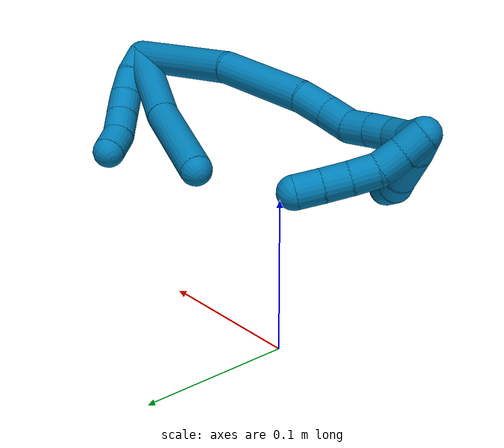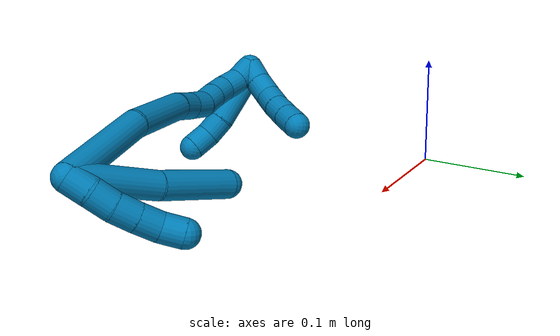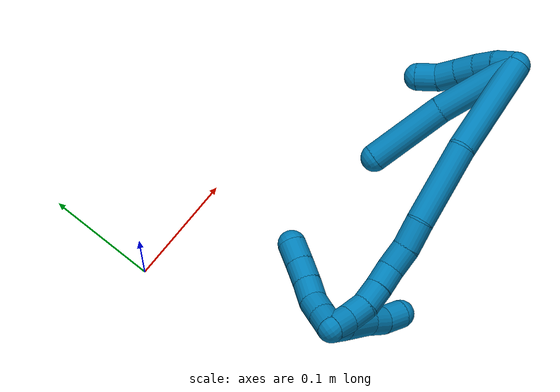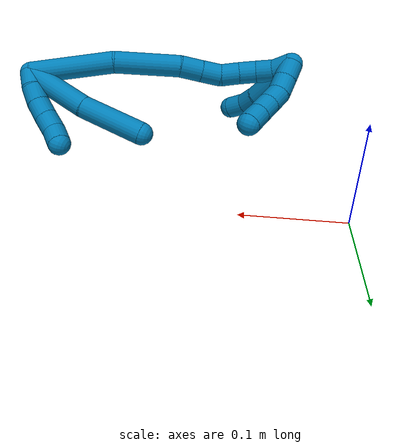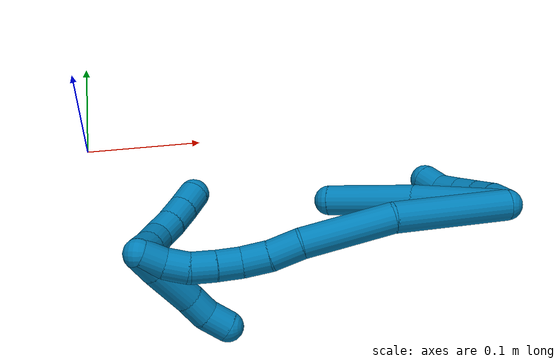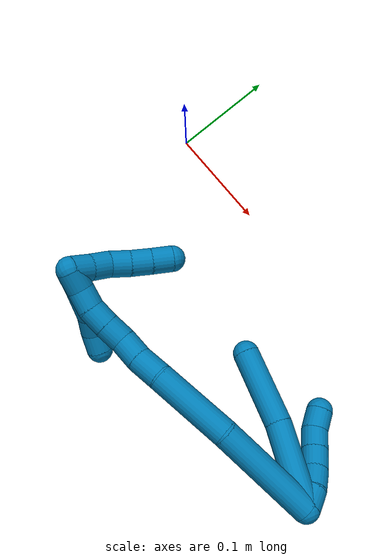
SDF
<sdf version="1.7">
 <world name="default">
  <model name="9">
   <static>0</static>
   <link name="9">
    <collision name="collision-cylinder-e_1_2_8">
     <pose>0.006914 -0.001709 -0.038188 3.09687 0.178945 2.65291</pose>
     <geometry><cylinder><radius>0.0125</radius><length>0.077693</length></cylinder></geometry>
     <surface>
      <friction><ode><mu>1.16</mu><mu2>1.16</mu2><slip1>0</slip1><slip2>0</slip2></ode></friction>
      <contact><ode><kp>1e+06</kp><kd>1</kd><max_vel>0</max_vel><min_depth>0.001</min_depth></ode></contact>
     </surface>
    </collision>
    <visual name="visual-cylinder-e_1_2_8">
     <pose>0.006914 -0.001709 -0.038188 3.09687 0.178945 2.65291</pose>
     <geometry><cylinder><radius>0.0125</radius><length>0.077693</length></cylinder></geometry>
     <material><ambient>0 0.490196 0.709804 1</ambient></material>
    </visual>
    <collision name="collision-cylinder-e_2_8_6">
     <pose>0.015126 -0.004831 -0.112478 3.10248 0.035881 1.48459</pose>
     <geometry><cylinder><radius>0.0125</radius><length>0.072307</length></cylinder></geometry>
     <surface>
      <friction><ode><mu>1.16</mu><mu2>1.16</mu2><slip1>0</slip1><slip2>0</slip2></ode></friction>
      <contact><ode><kp>1e+06</kp><kd>1</kd><max_vel>0</max_vel><min_depth>0.001</min_depth></ode></contact>
     </surface>
    </collision>
    <visual name="visual-cylinder-e_2_8_6">
     <pose>0.015126 -0.004831 -0.112478 3.10248 0.035881 1.48459</pose>
     <geometry><cylinder><radius>0.0125</radius><length>0.072307</length></cylinder></geometry>
     <material><ambient>0 0.490196 0.709804 1</ambient></material>
    </visual>
    <collision name="collision-cylinder-e_1_2_9">
     <pose>0.00786 -0.000923 -0.006113 2.9917 0.904302 2.83484</pose>
     <geometry><cylinder><radius>0.0125</radius><length>0.02</length></cylinder></geometry>
     <surface>
      <friction><ode><mu>1.16</mu><mu2>1.16</mu2><slip1>0</slip1><slip2>0</slip2></ode></friction>
      <contact><ode><kp>1e+06</kp><kd>1</kd><max_vel>0</max_vel><min_depth>0.001</min_depth></ode></contact>
     </surface>
    </collision>
    <visual name="visual-cylinder-e_1_2_9">
     <pose>0.00786 -0.000923 -0.006113 2.9917 0.904302 2.83484</pose>
     <geometry><cylinder><radius>0.0125</radius><length>0.02</length></cylinder></geometry>
     <material><ambient>0 0.490196 0.709804 1</ambient></material>
    </visual>
    <collision name="collision-cylinder-e_2_9_10">
     <pose>0.022379 -0.00397 -0.019377 2.8529 0.728775 2.41339</pose>
     <geometry><cylinder><radius>0.0125</radius><length>0.02</length></cylinder></geometry>
     <surface>
      <friction><ode><mu>1.16</mu><mu2>1.16</mu2><slip1>0</slip1><slip2>0</slip2></ode></friction>
      <contact><ode><kp>1e+06</kp><kd>1</kd><max_vel>0</max_vel><min_depth>0.001</min_depth></ode></contact>
     </surface>
    </collision>
    <visual name="visual-cylinder-e_2_9_10">
     <pose>0.022379 -0.00397 -0.019377 2.8529 0.728775 2.41339</pose>
     <geometry><cylinder><radius>0.0125</radius><length>0.02</length></cylinder></geometry>
     <material><ambient>0 0.490196 0.709804 1</ambient></material>
    </visual>
    <collision name="collision-cylinder-e_3_10_11">
     <pose>0.034677 -0.007542 -0.03466 2.96541 0.599002 2.58442</pose>
     <geometry><cylinder><radius>0.0125</radius><length>0.02</length></cylinder></geometry>
     <surface>
      <friction><ode><mu>1.16</mu><mu2>1.16</mu2><slip1>0</slip1><slip2>0</slip2></ode></friction>
      <contact><ode><kp>1e+06</kp><kd>1</kd><max_vel>0</max_vel><min_depth>0.001</min_depth></ode></contact>
     </surface>
    </collision>
    <visual name="visual-cylinder-e_3_10_11">
     <pose>0.034677 -0.007542 -0.03466 2.96541 0.599002 2.58442</pose>
     <geometry><cylinder><radius>0.0125</radius><length>0.02</length></cylinder></geometry>
     <material><ambient>0 0.490196 0.709804 1</ambient></material>
    </visual>
    <collision name="collision-cylinder-e_4_11_12">
     <pose>0.045728 -0.010103 -0.051125 3.00871 0.571944 2.6965</pose>
     <geometry><cylinder><radius>0.0125</radius><length>0.02</length></cylinder></geometry>
     <surface>
      <friction><ode><mu>1.16</mu><mu2>1.16</mu2><slip1>0</slip1><slip2>0</slip2></ode></friction>
      <contact><ode><kp>1e+06</kp><kd>1</kd><max_vel>0</max_vel><min_depth>0.001</min_depth></ode></contact>
     </surface>
    </collision>
    <visual name="visual-cylinder-e_4_11_12">
     <pose>0.045728 -0.010103 -0.051125 3.00871 0.571944 2.6965</pose>
     <geometry><cylinder><radius>0.0125</radius><length>0.02</length></cylinder></geometry>
     <material><ambient>0 0.490196 0.709804 1</ambient></material>
    </visual>
    <collision name="collision-cylinder-e_5_12_5">
     <pose>0.057595 -0.009646 -0.066934 -2.93436 0.701624 -2.58787</pose>
     <geometry><cylinder><radius>0.0125</radius><length>0.02</length></cylinder></geometry>
     <surface>
      <friction><ode><mu>1.16</mu><mu2>1.16</mu2><slip1>0</slip1><slip2>0</slip2></ode></friction>
      <contact><ode><kp>1e+06</kp><kd>1</kd><max_vel>0</max_vel><min_depth>0.001</min_depth></ode></contact>
     </surface>
    </collision>
    <visual name="visual-cylinder-e_5_12_5">
     <pose>0.057595 -0.009646 -0.066934 -2.93436 0.701624 -2.58787</pose>
     <geometry><cylinder><radius>0.0125</radius><length>0.02</length></cylinder></geometry>
     <material><ambient>0 0.490196 0.709804 1</ambient></material>
    </visual>
    <collision name="collision-cylinder-e_1_2_13">
     <pose>-0.023477 0.005033 -0.041496 -3.02088 -0.511742 2.68757</pose>
     <geometry><cylinder><radius>0.0125</radius><length>0.095883</length></cylinder></geometry>
     <surface>
      <friction><ode><mu>1.16</mu><mu2>1.16</mu2><slip1>0</slip1><slip2>0</slip2></ode></friction>
      <contact><ode><kp>1e+06</kp><kd>1</kd><max_vel>0</max_vel><min_depth>0.001</min_depth></ode></contact>
     </surface>
    </collision>
    <visual name="visual-cylinder-e_1_2_13">
     <pose>-0.023477 0.005033 -0.041496 -3.02088 -0.511742 2.68757</pose>
     <geometry><cylinder><radius>0.0125</radius><length>0.095883</length></cylinder></geometry>
     <material><ambient>0 0.490196 0.709804 1</ambient></material>
    </visual>
    <collision name="collision-cylinder-e_2_13_14">
     <pose>-0.062853 0.006199 -0.116355 3.02617 -0.442117 -2.6383</pose>
     <geometry><cylinder><radius>0.0125</radius><length>0.074321</length></cylinder></geometry>
     <surface>
      <friction><ode><mu>1.16</mu><mu2>1.16</mu2><slip1>0</slip1><slip2>0</slip2></ode></friction>
      <contact><ode><kp>1e+06</kp><kd>1</kd><max_vel>0</max_vel><min_depth>0.001</min_depth></ode></contact>
     </surface>
    </collision>
    <visual name="visual-cylinder-e_2_13_14">
     <pose>-0.062853 0.006199 -0.116355 3.02617 -0.442117 -2.6383</pose>
     <geometry><cylinder><radius>0.0125</radius><length>0.074321</length></cylinder></geometry>
     <material><ambient>0 0.490196 0.709804 1</ambient></material>
    </visual>
    <collision name="collision-cylinder-e_3_14_15">
     <pose>-0.083222 -0.001066 -0.161272 2.85566 -0.355409 -1.79027</pose>
     <geometry><cylinder><radius>0.0125</radius><length>0.02569</length></cylinder></geometry>
     <surface>
      <friction><ode><mu>1.16</mu><mu2>1.16</mu2><slip1>0</slip1><slip2>0</slip2></ode></friction>
      <contact><ode><kp>1e+06</kp><kd>1</kd><max_vel>0</max_vel><min_depth>0.001</min_depth></ode></contact>
     </surface>
    </collision>
    <visual name="visual-cylinder-e_3_14_15">
     <pose>-0.083222 -0.001066 -0.161272 2.85566 -0.355409 -1.79027</pose>
     <geometry><cylinder><radius>0.0125</radius><length>0.02569</length></cylinder></geometry>
     <material><ambient>0 0.490196 0.709804 1</ambient></material>
    </visual>
    <collision name="collision-cylinder-e_4_15_16">
     <pose>-0.090729 -0.006015 -0.183621 2.99882 -0.271642 -2.17745</pose>
     <geometry><cylinder><radius>0.0125</radius><length>0.022643</length></cylinder></geometry>
     <surface>
      <friction><ode><mu>1.16</mu><mu2>1.16</mu2><slip1>0</slip1><slip2>0</slip2></ode></friction>
      <contact><ode><kp>1e+06</kp><kd>1</kd><max_vel>0</max_vel><min_depth>0.001</min_depth></ode></contact>
     </surface>
    </collision>
    <visual name="visual-cylinder-e_4_15_16">
     <pose>-0.090729 -0.006015 -0.183621 2.99882 -0.271642 -2.17745</pose>
     <geometry><cylinder><radius>0.0125</radius><length>0.022643</length></cylinder></geometry>
     <material><ambient>0 0.490196 0.709804 1</ambient></material>
    </visual>
    <collision name="collision-cylinder-e_5_16_17">
     <pose>-0.098869 -0.006661 -0.203399 -3.04116 -0.514391 2.76397</pose>
     <geometry><cylinder><radius>0.0125</radius><length>0.020741</length></cylinder></geometry>
     <surface>
      <friction><ode><mu>1.16</mu><mu2>1.16</mu2><slip1>0</slip1><slip2>0</slip2></ode></friction>
      <contact><ode><kp>1e+06</kp><kd>1</kd><max_vel>0</max_vel><min_depth>0.001</min_depth></ode></contact>
     </surface>
    </collision>
    <visual name="visual-cylinder-e_5_16_17">
     <pose>-0.098869 -0.006661 -0.203399 -3.04116 -0.514391 2.76397</pose>
     <geometry><cylinder><radius>0.0125</radius><length>0.020741</length></cylinder></geometry>
     <material><ambient>0 0.490196 0.709804 1</ambient></material>
    </visual>
    <collision name="collision-cylinder-e_6_17_18">
     <pose>-0.108331 -0.004629 -0.221378 -3.01697 -0.448191 2.6072</pose>
     <geometry><cylinder><radius>0.0125</radius><length>0.02012</length></cylinder></geometry>
     <surface>
      <friction><ode><mu>1.16</mu><mu2>1.16</mu2><slip1>0</slip1><slip2>0</slip2></ode></friction>
      <contact><ode><kp>1e+06</kp><kd>1</kd><max_vel>0</max_vel><min_depth>0.001</min_depth></ode></contact>
     </surface>
    </collision>
    <visual name="visual-cylinder-e_6_17_18">
     <pose>-0.108331 -0.004629 -0.221378 -3.01697 -0.448191 2.6072</pose>
     <geometry><cylinder><radius>0.0125</radius><length>0.02012</length></cylinder></geometry>
     <material><ambient>0 0.490196 0.709804 1</ambient></material>
    </visual>
    <collision name="collision-cylinder-e_7_18_19">
     <pose>-0.115148 -0.000342 -0.239649 -2.81325 -0.24583 1.28151</pose>
     <geometry><cylinder><radius>0.0125</radius><length>0.020205</length></cylinder></geometry>
     <surface>
      <friction><ode><mu>1.16</mu><mu2>1.16</mu2><slip1>0</slip1><slip2>0</slip2></ode></friction>
      <contact><ode><kp>1e+06</kp><kd>1</kd><max_vel>0</max_vel><min_depth>0.001</min_depth></ode></contact>
     </surface>
    </collision>
    <visual name="visual-cylinder-e_7_18_19">
     <pose>-0.115148 -0.000342 -0.239649 -2.81325 -0.24583 1.28151</pose>
     <geometry><cylinder><radius>0.0125</radius><length>0.020205</length></cylinder></geometry>
     <material><ambient>0 0.490196 0.709804 1</ambient></material>
    </visual>
    <collision name="collision-cylinder-e_8_19_1">
     <pose>-0.121118 0.008503 -0.256629 -2.50584 -0.351473 0.989748</pose>
     <geometry><cylinder><radius>0.0125</radius><length>0.020399</length></cylinder></geometry>
     <surface>
      <friction><ode><mu>1.16</mu><mu2>1.16</mu2><slip1>0</slip1><slip2>0</slip2></ode></friction>
      <contact><ode><kp>1e+06</kp><kd>1</kd><max_vel>0</max_vel><min_depth>0.001</min_depth></ode></contact>
     </surface>
    </collision>
    <visual name="visual-cylinder-e_8_19_1">
     <pose>-0.121118 0.008503 -0.256629 -2.50584 -0.351473 0.989748</pose>
     <geometry><cylinder><radius>0.0125</radius><length>0.020399</length></cylinder></geometry>
     <material><ambient>0 0.490196 0.709804 1</ambient></material>
    </visual>
    <collision name="collision-cylinder-e_1_1_20">
     <pose>-0.114836 0.012171 -0.264411 1.60924 1.36738 1.40518</pose>
     <geometry><cylinder><radius>0.0125</radius><length>0.02</length></cylinder></geometry>
     <surface>
      <friction><ode><mu>1.16</mu><mu2>1.16</mu2><slip1>0</slip1><slip2>0</slip2></ode></friction>
      <contact><ode><kp>1e+06</kp><kd>1</kd><max_vel>0</max_vel><min_depth>0.001</min_depth></ode></contact>
     </surface>
    </collision>
    <visual name="visual-cylinder-e_1_1_20">
     <pose>-0.114836 0.012171 -0.264411 1.60924 1.36738 1.40518</pose>
     <geometry><cylinder><radius>0.0125</radius><length>0.02</length></cylinder></geometry>
     <material><ambient>0 0.490196 0.709804 1</ambient></material>
    </visual>
    <collision name="collision-cylinder-e_2_20_21">
     <pose>-0.095095 0.009123 -0.264564 1.6431 1.46741 1.5396</pose>
     <geometry><cylinder><radius>0.0125</radius><length>0.02</length></cylinder></geometry>
     <surface>
      <friction><ode><mu>1.16</mu><mu2>1.16</mu2><slip1>0</slip1><slip2>0</slip2></ode></friction>
      <contact><ode><kp>1e+06</kp><kd>1</kd><max_vel>0</max_vel><min_depth>0.001</min_depth></ode></contact>
     </surface>
    </collision>
    <visual name="visual-cylinder-e_2_20_21">
     <pose>-0.095095 0.009123 -0.264564 1.6431 1.46741 1.5396</pose>
     <geometry><cylinder><radius>0.0125</radius><length>0.02</length></cylinder></geometry>
     <material><ambient>0 0.490196 0.709804 1</ambient></material>
    </visual>
    <collision name="collision-cylinder-e_3_21_22">
     <pose>-0.07552 0.009205 -0.262178 -0.424548 1.29745 -0.323949</pose>
     <geometry><cylinder><radius>0.0125</radius><length>0.02</length></cylinder></geometry>
     <surface>
      <friction><ode><mu>1.16</mu><mu2>1.16</mu2><slip1>0</slip1><slip2>0</slip2></ode></friction>
      <contact><ode><kp>1e+06</kp><kd>1</kd><max_vel>0</max_vel><min_depth>0.001</min_depth></ode></contact>
     </surface>
    </collision>
    <visual name="visual-cylinder-e_3_21_22">
     <pose>-0.07552 0.009205 -0.262178 -0.424548 1.29745 -0.323949</pose>
     <geometry><cylinder><radius>0.0125</radius><length>0.02</length></cylinder></geometry>
     <material><ambient>0 0.490196 0.709804 1</ambient></material>
    </visual>
    <collision name="collision-cylinder-e_4_22_23">
     <pose>-0.056317 0.012205 -0.257535 -0.713004 1.27798 -0.539885</pose>
     <geometry><cylinder><radius>0.0125</radius><length>0.02</length></cylinder></geometry>
     <surface>
      <friction><ode><mu>1.16</mu><mu2>1.16</mu2><slip1>0</slip1><slip2>0</slip2></ode></friction>
      <contact><ode><kp>1e+06</kp><kd>1</kd><max_vel>0</max_vel><min_depth>0.001</min_depth></ode></contact>
     </surface>
    </collision>
    <visual name="visual-cylinder-e_4_22_23">
     <pose>-0.056317 0.012205 -0.257535 -0.713004 1.27798 -0.539885</pose>
     <geometry><cylinder><radius>0.0125</radius><length>0.02</length></cylinder></geometry>
     <material><ambient>0 0.490196 0.709804 1</ambient></material>
    </visual>
    <collision name="collision-cylinder-e_5_23_4">
     <pose>-0.037224 0.016345 -0.253272 -0.824951 1.2593 -0.617246</pose>
     <geometry><cylinder><radius>0.0125</radius><length>0.02</length></cylinder></geometry>
     <surface>
      <friction><ode><mu>1.16</mu><mu2>1.16</mu2><slip1>0</slip1><slip2>0</slip2></ode></friction>
      <contact><ode><kp>1e+06</kp><kd>1</kd><max_vel>0</max_vel><min_depth>0.001</min_depth></ode></contact>
     </surface>
    </collision>
    <visual name="visual-cylinder-e_5_23_4">
     <pose>-0.037224 0.016345 -0.253272 -0.824951 1.2593 -0.617246</pose>
     <geometry><cylinder><radius>0.0125</radius><length>0.02</length></cylinder></geometry>
     <material><ambient>0 0.490196 0.709804 1</ambient></material>
    </visual>
    <collision name="collision-cylinder-e_1_1_24">
     <pose>-0.120586 0.005348 -0.260477 1.15942 0.396936 0.261857</pose>
     <geometry><cylinder><radius>0.0125</radius><length>0.020918</length></cylinder></geometry>
     <surface>
      <friction><ode><mu>1.16</mu><mu2>1.16</mu2><slip1>0</slip1><slip2>0</slip2></ode></friction>
      <contact><ode><kp>1e+06</kp><kd>1</kd><max_vel>0</max_vel><min_depth>0.001</min_depth></ode></contact>
     </surface>
    </collision>
    <visual name="visual-cylinder-e_1_1_24">
     <pose>-0.120586 0.005348 -0.260477 1.15942 0.396936 0.261857</pose>
     <geometry><cylinder><radius>0.0125</radius><length>0.020918</length></cylinder></geometry>
     <material><ambient>0 0.490196 0.709804 1</ambient></material>
    </visual>
    <collision name="collision-cylinder-e_2_24_25">
     <pose>-0.110112 -0.019317 -0.247336 1.04023 0.337146 0.194325</pose>
     <geometry><cylinder><radius>0.0125</radius><length>0.038882</length></cylinder></geometry>
     <surface>
      <friction><ode><mu>1.16</mu><mu2>1.16</mu2><slip1>0</slip1><slip2>0</slip2></ode></friction>
      <contact><ode><kp>1e+06</kp><kd>1</kd><max_vel>0</max_vel><min_depth>0.001</min_depth></ode></contact>
     </surface>
    </collision>
    <visual name="visual-cylinder-e_2_24_25">
     <pose>-0.110112 -0.019317 -0.247336 1.04023 0.337146 0.194325</pose>
     <geometry><cylinder><radius>0.0125</radius><length>0.038882</length></cylinder></geometry>
     <material><ambient>0 0.490196 0.709804 1</ambient></material>
    </visual>
    <collision name="collision-cylinder-e_3_25_26">
     <pose>-0.101985 -0.043354 -0.232596 0.984382 0.170351 0.091501</pose>
     <geometry><cylinder><radius>0.0125</radius><length>0.020009</length></cylinder></geometry>
     <surface>
      <friction><ode><mu>1.16</mu><mu2>1.16</mu2><slip1>0</slip1><slip2>0</slip2></ode></friction>
      <contact><ode><kp>1e+06</kp><kd>1</kd><max_vel>0</max_vel><min_depth>0.001</min_depth></ode></contact>
     </surface>
    </collision>
    <visual name="visual-cylinder-e_3_25_26">
     <pose>-0.101985 -0.043354 -0.232596 0.984382 0.170351 0.091501</pose>
     <geometry><cylinder><radius>0.0125</radius><length>0.020009</length></cylinder></geometry>
     <material><ambient>0 0.490196 0.709804 1</ambient></material>
    </visual>
    <collision name="collision-cylinder-e_4_26_3">
     <pose>-0.098477 -0.057751 -0.219369 0.672221 0.180418 0.063182</pose>
     <geometry><cylinder><radius>0.0125</radius><length>0.020191</length></cylinder></geometry>
     <surface>
      <friction><ode><mu>1.16</mu><mu2>1.16</mu2><slip1>0</slip1><slip2>0</slip2></ode></friction>
      <contact><ode><kp>1e+06</kp><kd>1</kd><max_vel>0</max_vel><min_depth>0.001</min_depth></ode></contact>
     </surface>
    </collision>
    <visual name="visual-cylinder-e_4_26_3">
     <pose>-0.098477 -0.057751 -0.219369 0.672221 0.180418 0.063182</pose>
     <geometry><cylinder><radius>0.0125</radius><length>0.020191</length></cylinder></geometry>
     <material><ambient>0 0.490196 0.709804 1</ambient></material>
    </visual>
    <collision name="collision-sphere-3">
     <pose>-0.096666 -0.063936 -0.211598 0 -0 0</pose>
     <geometry><sphere><radius>0.0125</radius></sphere></geometry>
     <surface>
      <friction><ode><mu>1.16</mu><mu2>1.16</mu2><slip1>0</slip1><slip2>0</slip2></ode></friction>
      <contact><ode><kp>1e+06</kp><kd>1</kd><max_vel>0</max_vel><min_depth>0.001</min_depth></ode></contact>
     </surface>
    </collision>
    <visual name="visual-sphere-3">
     <pose>-0.096666 -0.063936 -0.211598 0 -0 0</pose>
     <geometry><sphere><radius>0.0125</radius></sphere></geometry>
     <material><ambient>0 0.490196 0.709804 1</ambient></material>
    </visual>
    <collision name="collision-sphere-26">
     <pose>-0.100289 -0.051567 -0.22714 0 -0 0</pose>
     <geometry><sphere><radius>0.0125</radius></sphere></geometry>
     <surface>
      <friction><ode><mu>1.16</mu><mu2>1.16</mu2><slip1>0</slip1><slip2>0</slip2></ode></friction>
      <contact><ode><kp>1e+06</kp><kd>1</kd><max_vel>0</max_vel><min_depth>0.001</min_depth></ode></contact>
     </surface>
    </collision>
    <visual name="visual-sphere-26">
     <pose>-0.100289 -0.051567 -0.22714 0 -0 0</pose>
     <geometry><sphere><radius>0.0125</radius></sphere></geometry>
     <material><ambient>0 0.490196 0.709804 1</ambient></material>
    </visual>
    <collision name="collision-sphere-25">
     <pose>-0.103681 -0.035142 -0.238052 0 -0 0</pose>
     <geometry><sphere><radius>0.0125</radius></sphere></geometry>
     <surface>
      <friction><ode><mu>1.16</mu><mu2>1.16</mu2><slip1>0</slip1><slip2>0</slip2></ode></friction>
      <contact><ode><kp>1e+06</kp><kd>1</kd><max_vel>0</max_vel><min_depth>0.001</min_depth></ode></contact>
     </surface>
    </collision>
    <visual name="visual-sphere-25">
     <pose>-0.103681 -0.035142 -0.238052 0 -0 0</pose>
     <geometry><sphere><radius>0.0125</radius></sphere></geometry>
     <material><ambient>0 0.490196 0.709804 1</ambient></material>
    </visual>
    <collision name="collision-sphere-24">
     <pose>-0.116543 -0.003493 -0.25662 0 -0 0</pose>
     <geometry><sphere><radius>0.0125</radius></sphere></geometry>
     <surface>
      <friction><ode><mu>1.16</mu><mu2>1.16</mu2><slip1>0</slip1><slip2>0</slip2></ode></friction>
      <contact><ode><kp>1e+06</kp><kd>1</kd><max_vel>0</max_vel><min_depth>0.001</min_depth></ode></contact>
     </surface>
    </collision>
    <visual name="visual-sphere-24">
     <pose>-0.116543 -0.003493 -0.25662 0 -0 0</pose>
     <geometry><sphere><radius>0.0125</radius></sphere></geometry>
     <material><ambient>0 0.490196 0.709804 1</ambient></material>
    </visual>
    <collision name="collision-sphere-4">
     <pose>-0.027705 0.018596 -0.251192 0 -0 0</pose>
     <geometry><sphere><radius>0.0125</radius></sphere></geometry>
     <surface>
      <friction><ode><mu>1.16</mu><mu2>1.16</mu2><slip1>0</slip1><slip2>0</slip2></ode></friction>
      <contact><ode><kp>1e+06</kp><kd>1</kd><max_vel>0</max_vel><min_depth>0.001</min_depth></ode></contact>
     </surface>
    </collision>
    <visual name="visual-sphere-4">
     <pose>-0.027705 0.018596 -0.251192 0 -0 0</pose>
     <geometry><sphere><radius>0.0125</radius></sphere></geometry>
     <material><ambient>0 0.490196 0.709804 1</ambient></material>
    </visual>
    <collision name="collision-sphere-23">
     <pose>-0.046743 0.014093 -0.255352 0 -0 0</pose>
     <geometry><sphere><radius>0.0125</radius></sphere></geometry>
     <surface>
      <friction><ode><mu>1.16</mu><mu2>1.16</mu2><slip1>0</slip1><slip2>0</slip2></ode></friction>
      <contact><ode><kp>1e+06</kp><kd>1</kd><max_vel>0</max_vel><min_depth>0.001</min_depth></ode></contact>
     </surface>
    </collision>
    <visual name="visual-sphere-23">
     <pose>-0.046743 0.014093 -0.255352 0 -0 0</pose>
     <geometry><sphere><radius>0.0125</radius></sphere></geometry>
     <material><ambient>0 0.490196 0.709804 1</ambient></material>
    </visual>
    <collision name="collision-sphere-22">
     <pose>-0.065891 0.010317 -0.259718 0 -0 0</pose>
     <geometry><sphere><radius>0.0125</radius></sphere></geometry>
     <surface>
      <friction><ode><mu>1.16</mu><mu2>1.16</mu2><slip1>0</slip1><slip2>0</slip2></ode></friction>
      <contact><ode><kp>1e+06</kp><kd>1</kd><max_vel>0</max_vel><min_depth>0.001</min_depth></ode></contact>
     </surface>
    </collision>
    <visual name="visual-sphere-22">
     <pose>-0.065891 0.010317 -0.259718 0 -0 0</pose>
     <geometry><sphere><radius>0.0125</radius></sphere></geometry>
     <material><ambient>0 0.490196 0.709804 1</ambient></material>
    </visual>
    <collision name="collision-sphere-21">
     <pose>-0.085149 0.008093 -0.264638 0 -0 0</pose>
     <geometry><sphere><radius>0.0125</radius></sphere></geometry>
     <surface>
      <friction><ode><mu>1.16</mu><mu2>1.16</mu2><slip1>0</slip1><slip2>0</slip2></ode></friction>
      <contact><ode><kp>1e+06</kp><kd>1</kd><max_vel>0</max_vel><min_depth>0.001</min_depth></ode></contact>
     </surface>
    </collision>
    <visual name="visual-sphere-21">
     <pose>-0.085149 0.008093 -0.264638 0 -0 0</pose>
     <geometry><sphere><radius>0.0125</radius></sphere></geometry>
     <material><ambient>0 0.490196 0.709804 1</ambient></material>
    </visual>
    <collision name="collision-sphere-20">
     <pose>-0.105042 0.010152 -0.264489 0 -0 0</pose>
     <geometry><sphere><radius>0.0125</radius></sphere></geometry>
     <surface>
      <friction><ode><mu>1.16</mu><mu2>1.16</mu2><slip1>0</slip1><slip2>0</slip2></ode></friction>
      <contact><ode><kp>1e+06</kp><kd>1</kd><max_vel>0</max_vel><min_depth>0.001</min_depth></ode></contact>
     </surface>
    </collision>
    <visual name="visual-sphere-20">
     <pose>-0.105042 0.010152 -0.264489 0 -0 0</pose>
     <geometry><sphere><radius>0.0125</radius></sphere></geometry>
     <material><ambient>0 0.490196 0.709804 1</ambient></material>
    </visual>
    <collision name="collision-sphere-11">
     <pose>0.040315 -0.008989 -0.042791 0 -0 0</pose>
     <geometry><sphere><radius>0.0125</radius></sphere></geometry>
     <surface>
      <friction><ode><mu>1.16</mu><mu2>1.16</mu2><slip1>0</slip1><slip2>0</slip2></ode></friction>
      <contact><ode><kp>1e+06</kp><kd>1</kd><max_vel>0</max_vel><min_depth>0.001</min_depth></ode></contact>
     </surface>
    </collision>
    <visual name="visual-sphere-11">
     <pose>0.040315 -0.008989 -0.042791 0 -0 0</pose>
     <geometry><sphere><radius>0.0125</radius></sphere></geometry>
     <material><ambient>0 0.490196 0.709804 1</ambient></material>
    </visual>
    <collision name="collision-sphere-10">
     <pose>0.029039 -0.006094 -0.026528 0 -0 0</pose>
     <geometry><sphere><radius>0.0125</radius></sphere></geometry>
     <surface>
      <friction><ode><mu>1.16</mu><mu2>1.16</mu2><slip1>0</slip1><slip2>0</slip2></ode></friction>
      <contact><ode><kp>1e+06</kp><kd>1</kd><max_vel>0</max_vel><min_depth>0.001</min_depth></ode></contact>
     </surface>
    </collision>
    <visual name="visual-sphere-10">
     <pose>0.029039 -0.006094 -0.026528 0 -0 0</pose>
     <geometry><sphere><radius>0.0125</radius></sphere></geometry>
     <material><ambient>0 0.490196 0.709804 1</ambient></material>
    </visual>
    <collision name="collision-sphere-6">
     <pose>0.016423 -0.006244 -0.148581 0 -0 0</pose>
     <geometry><sphere><radius>0.0125</radius></sphere></geometry>
     <surface>
      <friction><ode><mu>1.16</mu><mu2>1.16</mu2><slip1>0</slip1><slip2>0</slip2></ode></friction>
      <contact><ode><kp>1e+06</kp><kd>1</kd><max_vel>0</max_vel><min_depth>0.001</min_depth></ode></contact>
     </surface>
    </collision>
    <visual name="visual-sphere-6">
     <pose>0.016423 -0.006244 -0.148581 0 -0 0</pose>
     <geometry><sphere><radius>0.0125</radius></sphere></geometry>
     <material><ambient>0 0.490196 0.709804 1</ambient></material>
    </visual>
    <collision name="collision-sphere-9">
     <pose>0.01572 -0.001846 -0.012226 0 -0 0</pose>
     <geometry><sphere><radius>0.0125</radius></sphere></geometry>
     <surface>
      <friction><ode><mu>1.16</mu><mu2>1.16</mu2><slip1>0</slip1><slip2>0</slip2></ode></friction>
      <contact><ode><kp>1e+06</kp><kd>1</kd><max_vel>0</max_vel><min_depth>0.001</min_depth></ode></contact>
     </surface>
    </collision>
    <visual name="visual-sphere-9">
     <pose>0.01572 -0.001846 -0.012226 0 -0 0</pose>
     <geometry><sphere><radius>0.0125</radius></sphere></geometry>
     <material><ambient>0 0.490196 0.709804 1</ambient></material>
    </visual>
    <collision name="collision-sphere-2">
     <geometry><sphere><radius>0.0125</radius></sphere></geometry>
     <surface>
      <friction><ode><mu>1.16</mu><mu2>1.16</mu2><slip1>0</slip1><slip2>0</slip2></ode></friction>
      <contact><ode><kp>1e+06</kp><kd>1</kd><max_vel>0</max_vel><min_depth>0.001</min_depth></ode></contact>
     </surface>
    </collision>
    <visual name="visual-sphere-2">
     <geometry><sphere><radius>0.0125</radius></sphere></geometry>
     <material><ambient>0 0.490196 0.709804 1</ambient></material>
    </visual>
    <collision name="collision-sphere-19">
     <pose>-0.117607 0.002817 -0.248924 0 -0 0</pose>
     <geometry><sphere><radius>0.0125</radius></sphere></geometry>
     <surface>
      <friction><ode><mu>1.16</mu><mu2>1.16</mu2><slip1>0</slip1><slip2>0</slip2></ode></friction>
      <contact><ode><kp>1e+06</kp><kd>1</kd><max_vel>0</max_vel><min_depth>0.001</min_depth></ode></contact>
     </surface>
    </collision>
    <visual name="visual-sphere-19">
     <pose>-0.117607 0.002817 -0.248924 0 -0 0</pose>
     <geometry><sphere><radius>0.0125</radius></sphere></geometry>
     <material><ambient>0 0.490196 0.709804 1</ambient></material>
    </visual>
    <collision name="collision-sphere-8">
     <pose>0.013829 -0.003418 -0.076375 0 -0 0</pose>
     <geometry><sphere><radius>0.0125</radius></sphere></geometry>
     <surface>
      <friction><ode><mu>1.16</mu><mu2>1.16</mu2><slip1>0</slip1><slip2>0</slip2></ode></friction>
      <contact><ode><kp>1e+06</kp><kd>1</kd><max_vel>0</max_vel><min_depth>0.001</min_depth></ode></contact>
     </surface>
    </collision>
    <visual name="visual-sphere-8">
     <pose>0.013829 -0.003418 -0.076375 0 -0 0</pose>
     <geometry><sphere><radius>0.0125</radius></sphere></geometry>
     <material><ambient>0 0.490196 0.709804 1</ambient></material>
    </visual>
    <collision name="collision-sphere-12">
     <pose>0.051141 -0.011217 -0.059459 0 -0 0</pose>
     <geometry><sphere><radius>0.0125</radius></sphere></geometry>
     <surface>
      <friction><ode><mu>1.16</mu><mu2>1.16</mu2><slip1>0</slip1><slip2>0</slip2></ode></friction>
      <contact><ode><kp>1e+06</kp><kd>1</kd><max_vel>0</max_vel><min_depth>0.001</min_depth></ode></contact>
     </surface>
    </collision>
    <visual name="visual-sphere-12">
     <pose>0.051141 -0.011217 -0.059459 0 -0 0</pose>
     <geometry><sphere><radius>0.0125</radius></sphere></geometry>
     <material><ambient>0 0.490196 0.709804 1</ambient></material>
    </visual>
    <collision name="collision-sphere-5">
     <pose>0.06405 -0.008074 -0.074409 0 -0 0</pose>
     <geometry><sphere><radius>0.0125</radius></sphere></geometry>
     <surface>
      <friction><ode><mu>1.16</mu><mu2>1.16</mu2><slip1>0</slip1><slip2>0</slip2></ode></friction>
      <contact><ode><kp>1e+06</kp><kd>1</kd><max_vel>0</max_vel><min_depth>0.001</min_depth></ode></contact>
     </surface>
    </collision>
    <visual name="visual-sphere-5">
     <pose>0.06405 -0.008074 -0.074409 0 -0 0</pose>
     <geometry><sphere><radius>0.0125</radius></sphere></geometry>
     <material><ambient>0 0.490196 0.709804 1</ambient></material>
    </visual>
    <collision name="collision-sphere-13">
     <pose>-0.046954 0.010067 -0.082991 0 -0 0</pose>
     <geometry><sphere><radius>0.0125</radius></sphere></geometry>
     <surface>
      <friction><ode><mu>1.16</mu><mu2>1.16</mu2><slip1>0</slip1><slip2>0</slip2></ode></friction>
      <contact><ode><kp>1e+06</kp><kd>1</kd><max_vel>0</max_vel><min_depth>0.001</min_depth></ode></contact>
     </surface>
    </collision>
    <visual name="visual-sphere-13">
     <pose>-0.046954 0.010067 -0.082991 0 -0 0</pose>
     <geometry><sphere><radius>0.0125</radius></sphere></geometry>
     <material><ambient>0 0.490196 0.709804 1</ambient></material>
    </visual>
    <collision name="collision-sphere-14">
     <pose>-0.078752 0.00233 -0.149719 0 -0 0</pose>
     <geometry><sphere><radius>0.0125</radius></sphere></geometry>
     <surface>
      <friction><ode><mu>1.16</mu><mu2>1.16</mu2><slip1>0</slip1><slip2>0</slip2></ode></friction>
      <contact><ode><kp>1e+06</kp><kd>1</kd><max_vel>0</max_vel><min_depth>0.001</min_depth></ode></contact>
     </surface>
    </collision>
    <visual name="visual-sphere-14">
     <pose>-0.078752 0.00233 -0.149719 0 -0 0</pose>
     <geometry><sphere><radius>0.0125</radius></sphere></geometry>
     <material><ambient>0 0.490196 0.709804 1</ambient></material>
    </visual>
    <collision name="collision-sphere-15">
     <pose>-0.087691 -0.004463 -0.172825 0 -0 0</pose>
     <geometry><sphere><radius>0.0125</radius></sphere></geometry>
     <surface>
      <friction><ode><mu>1.16</mu><mu2>1.16</mu2><slip1>0</slip1><slip2>0</slip2></ode></friction>
      <contact><ode><kp>1e+06</kp><kd>1</kd><max_vel>0</max_vel><min_depth>0.001</min_depth></ode></contact>
     </surface>
    </collision>
    <visual name="visual-sphere-15">
     <pose>-0.087691 -0.004463 -0.172825 0 -0 0</pose>
     <geometry><sphere><radius>0.0125</radius></sphere></geometry>
     <material><ambient>0 0.490196 0.709804 1</ambient></material>
    </visual>
    <collision name="collision-sphere-16">
     <pose>-0.093767 -0.007567 -0.194416 0 -0 0</pose>
     <geometry><sphere><radius>0.0125</radius></sphere></geometry>
     <surface>
      <friction><ode><mu>1.16</mu><mu2>1.16</mu2><slip1>0</slip1><slip2>0</slip2></ode></friction>
      <contact><ode><kp>1e+06</kp><kd>1</kd><max_vel>0</max_vel><min_depth>0.001</min_depth></ode></contact>
     </surface>
    </collision>
    <visual name="visual-sphere-16">
     <pose>-0.093767 -0.007567 -0.194416 0 -0 0</pose>
     <geometry><sphere><radius>0.0125</radius></sphere></geometry>
     <material><ambient>0 0.490196 0.709804 1</ambient></material>
    </visual>
    <collision name="collision-sphere-17">
     <pose>-0.103971 -0.005756 -0.212382 0 -0 0</pose>
     <geometry><sphere><radius>0.0125</radius></sphere></geometry>
     <surface>
      <friction><ode><mu>1.16</mu><mu2>1.16</mu2><slip1>0</slip1><slip2>0</slip2></ode></friction>
      <contact><ode><kp>1e+06</kp><kd>1</kd><max_vel>0</max_vel><min_depth>0.001</min_depth></ode></contact>
     </surface>
    </collision>
    <visual name="visual-sphere-17">
     <pose>-0.103971 -0.005756 -0.212382 0 -0 0</pose>
     <geometry><sphere><radius>0.0125</radius></sphere></geometry>
     <material><ambient>0 0.490196 0.709804 1</ambient></material>
    </visual>
    <collision name="collision-sphere-18">
     <pose>-0.11269 -0.003502 -0.230374 0 -0 0</pose>
     <geometry><sphere><radius>0.0125</radius></sphere></geometry>
     <surface>
      <friction><ode><mu>1.16</mu><mu2>1.16</mu2><slip1>0</slip1><slip2>0</slip2></ode></friction>
      <contact><ode><kp>1e+06</kp><kd>1</kd><max_vel>0</max_vel><min_depth>0.001</min_depth></ode></contact>
     </surface>
    </collision>
    <visual name="visual-sphere-18">
     <pose>-0.11269 -0.003502 -0.230374 0 -0 0</pose>
     <geometry><sphere><radius>0.0125</radius></sphere></geometry>
     <material><ambient>0 0.490196 0.709804 1</ambient></material>
    </visual>
    <collision name="collision-sphere-1">
     <pose>-0.12463 0.014189 -0.264334 0 -0 0</pose>
     <geometry><sphere><radius>0.0125</radius></sphere></geometry>
     <surface>
      <friction><ode><mu>1.16</mu><mu2>1.16</mu2><slip1>0</slip1><slip2>0</slip2></ode></friction>
      <contact><ode><kp>1e+06</kp><kd>1</kd><max_vel>0</max_vel><min_depth>0.001</min_depth></ode></contact>
     </surface>
    </collision>
    <visual name="visual-sphere-1">
     <pose>-0.12463 0.014189 -0.264334 0 -0 0</pose>
     <geometry><sphere><radius>0.0125</radius></sphere></geometry>
     <material><ambient>0 0.490196 0.709804 1</ambient></material>
    </visual>
    <inertial>
     <pose>-0.044745 -0.002537 -0.139372 0 -0 0</pose>
     <mass>0.75</mass>
     <inertia><ixx>-4.3e-05</ixx><ixy>0</ixy><ixz>0</ixz><iyy>0.000227</iyy><iyz>0</iyz><izz>8e-06</izz></inertia>
    </inertial>
   </link>
   <pose>0.338387 -0.147655 0.068239 1.34827 0.453547 1.19008</pose>
  </model>
 </world>
</sdf>
